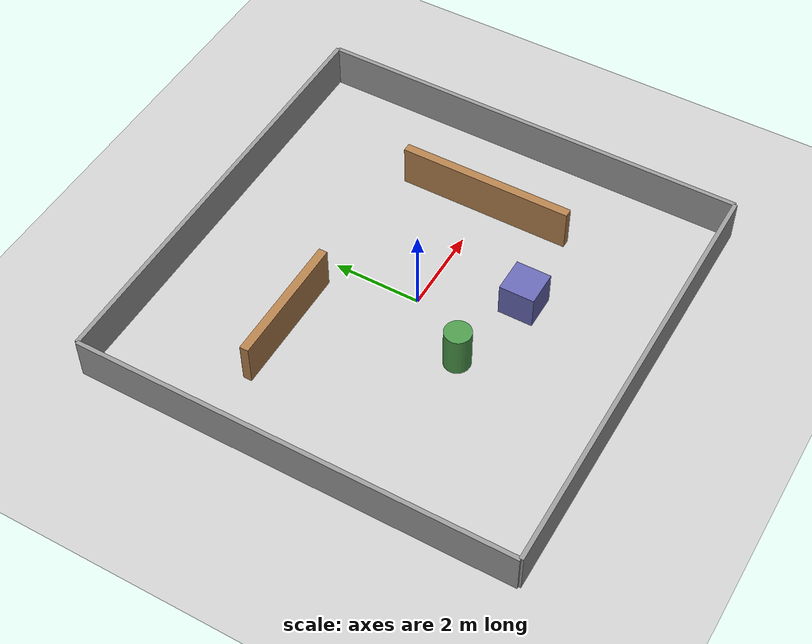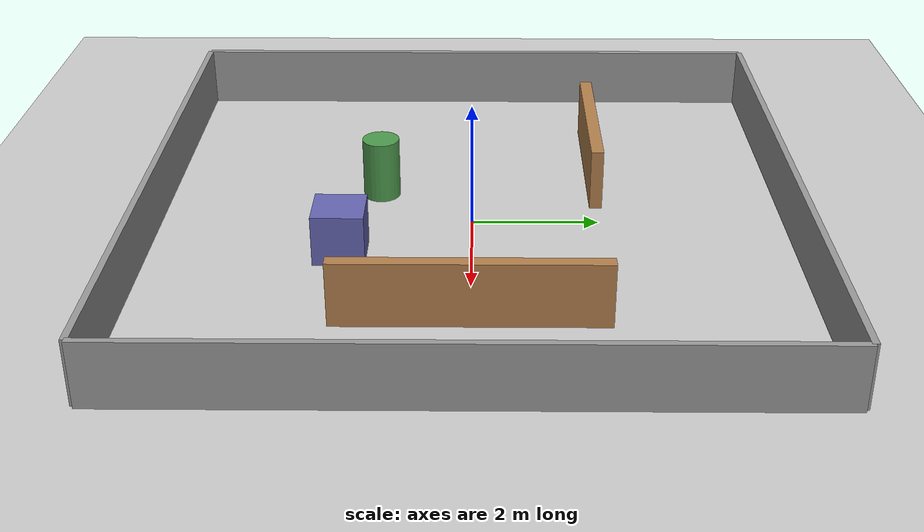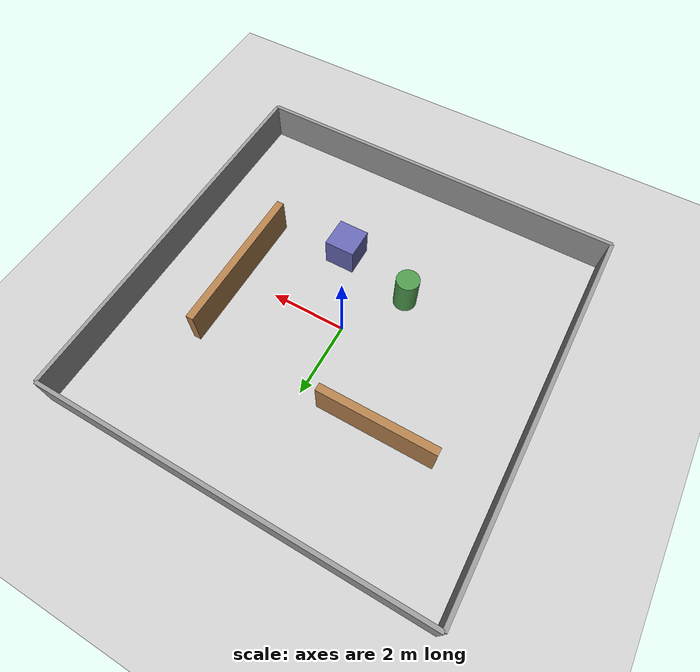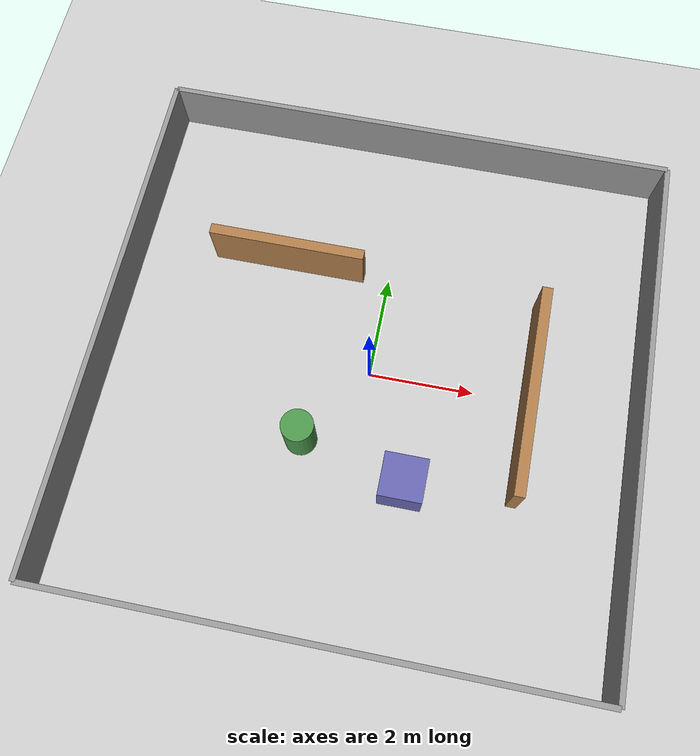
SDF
<?xml version="1.0"?>
<sdf version="1.6">
  <world name="obstacles_world">
    <include>
      <uri>model://sun</uri>
    </include>
    <include>
      <uri>model://ground_plane</uri>
    </include>

    <physics type="ode">
      <max_step_size>0.002</max_step_size>
      <real_time_factor>1.0</real_time_factor>
      <real_time_update_rate>500</real_time_update_rate>
    </physics>

    <gravity>0 0 -9.81</gravity>

    <!-- Wall 1 -->
    <model name="wall_1">
      <static>true</static>
      <pose>3 0 0.5 0 0 0</pose>
      <link name="link">
        <collision name="collision">
          <geometry><box><size>0.2 4.0 1.0</size></box></geometry>
        </collision>
        <visual name="visual">
          <geometry><box><size>0.2 4.0 1.0</size></box></geometry>
          <material><ambient>0.6 0.4 0.2 1</ambient><diffuse>0.7 0.5 0.3 1</diffuse></material>
        </visual>
      </link>
    </model>

    <!-- Wall 2 -->
    <model name="wall_2">
      <static>true</static>
      <pose>-2 2 0.5 0 0 0</pose>
      <link name="link">
        <collision name="collision">
          <geometry><box><size>3.0 0.2 1.0</size></box></geometry>
        </collision>
        <visual name="visual">
          <geometry><box><size>3.0 0.2 1.0</size></box></geometry>
          <material><ambient>0.6 0.4 0.2 1</ambient><diffuse>0.7 0.5 0.3 1</diffuse></material>
        </visual>
      </link>
    </model>

    <!-- Box obstacle -->
    <model name="box_1">
      <static>true</static>
      <pose>1 -2 0.4 0 0 0</pose>
      <link name="link">
        <collision name="collision">
          <geometry><box><size>0.8 0.8 0.8</size></box></geometry>
        </collision>
        <visual name="visual">
          <geometry><box><size>0.8 0.8 0.8</size></box></geometry>
          <material><ambient>0.3 0.3 0.6 1</ambient><diffuse>0.4 0.4 0.7 1</diffuse></material>
        </visual>
      </link>
    </model>

    <!-- Cylinder obstacle -->
    <model name="cylinder_1">
      <static>true</static>
      <pose>-1 -1.5 0.5 0 0 0</pose>
      <link name="link">
        <collision name="collision">
          <geometry><cylinder><radius>0.3</radius><length>1.0</length></cylinder></geometry>
        </collision>
        <visual name="visual">
          <geometry><cylinder><radius>0.3</radius><length>1.0</length></cylinder></geometry>
          <material><ambient>0.2 0.5 0.2 1</ambient><diffuse>0.3 0.6 0.3 1</diffuse></material>
        </visual>
      </link>
    </model>

    <!-- Boundary walls -->
    <model name="boundary_north">
      <static>true</static>
      <pose>0 5 0.5 0 0 0</pose>
      <link name="link">
        <collision name="collision">
          <geometry><box><size>10 0.1 1.0</size></box></geometry>
        </collision>
        <visual name="visual">
          <geometry><box><size>10 0.1 1.0</size></box></geometry>
          <material><ambient>0.5 0.5 0.5 1</ambient><diffuse>0.6 0.6 0.6 1</diffuse></material>
        </visual>
      </link>
    </model>

    <model name="boundary_south">
      <static>true</static>
      <pose>0 -5 0.5 0 0 0</pose>
      <link name="link">
        <collision name="collision">
          <geometry><box><size>10 0.1 1.0</size></box></geometry>
        </collision>
        <visual name="visual">
          <geometry><box><size>10 0.1 1.0</size></box></geometry>
          <material><ambient>0.5 0.5 0.5 1</ambient><diffuse>0.6 0.6 0.6 1</diffuse></material>
        </visual>
      </link>
    </model>

    <model name="boundary_east">
      <static>true</static>
      <pose>5 0 0.5 0 0 0</pose>
      <link name="link">
        <collision name="collision">
          <geometry><box><size>0.1 10 1.0</size></box></geometry>
        </collision>
        <visual name="visual">
          <geometry><box><size>0.1 10 1.0</size></box></geometry>
          <material><ambient>0.5 0.5 0.5 1</ambient><diffuse>0.6 0.6 0.6 1</diffuse></material>
        </visual>
      </link>
    </model>

    <model name="boundary_west">
      <static>true</static>
      <pose>-5 0 0.5 0 0 0</pose>
      <link name="link">
        <collision name="collision">
          <geometry><box><size>0.1 10 1.0</size></box></geometry>
        </collision>
        <visual name="visual">
          <geometry><box><size>0.1 10 1.0</size></box></geometry>
          <material><ambient>0.5 0.5 0.5 1</ambient><diffuse>0.6 0.6 0.6 1</diffuse></material>
        </visual>
      </link>
    </model>
  </world>
</sdf>
